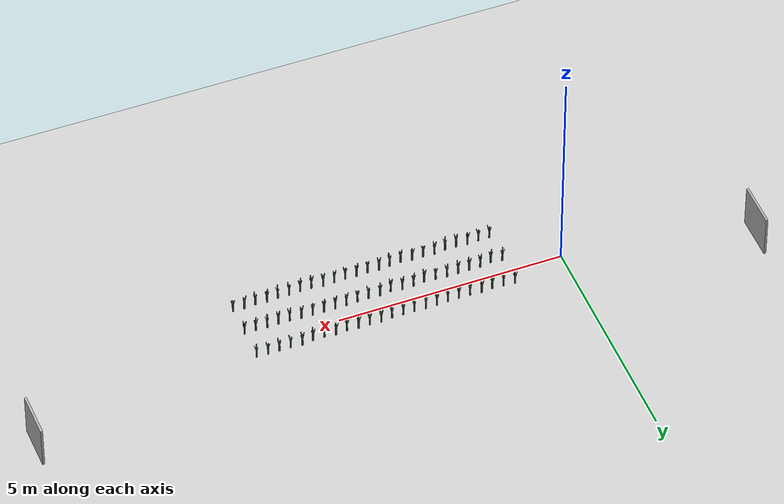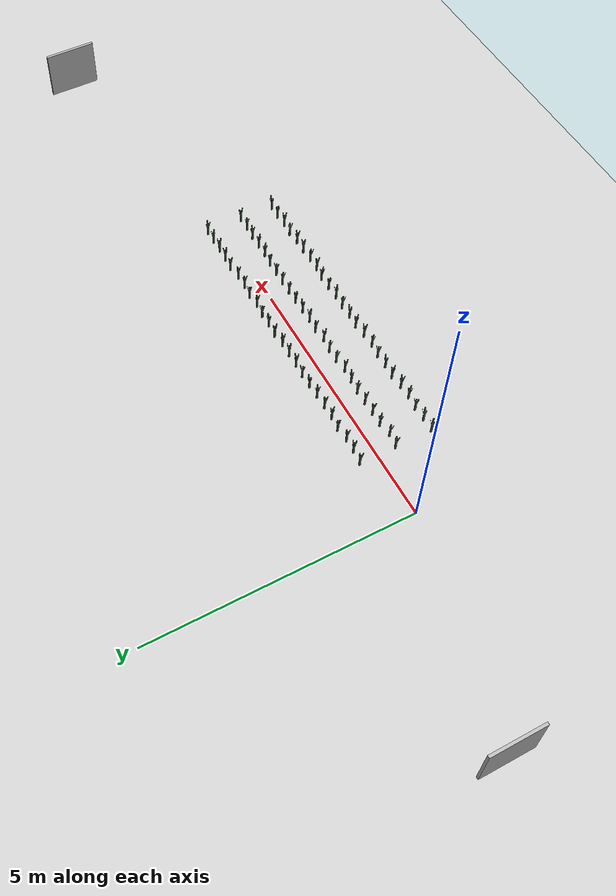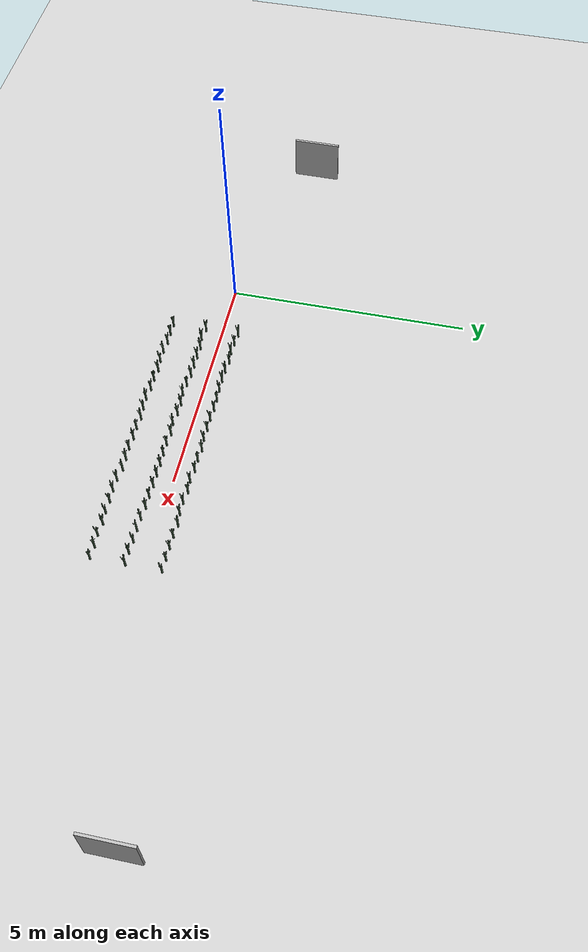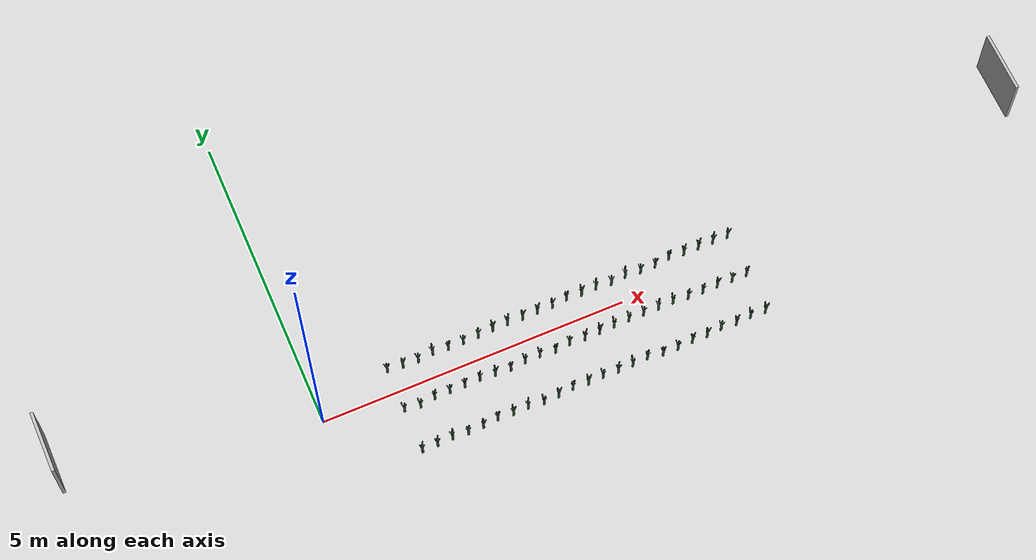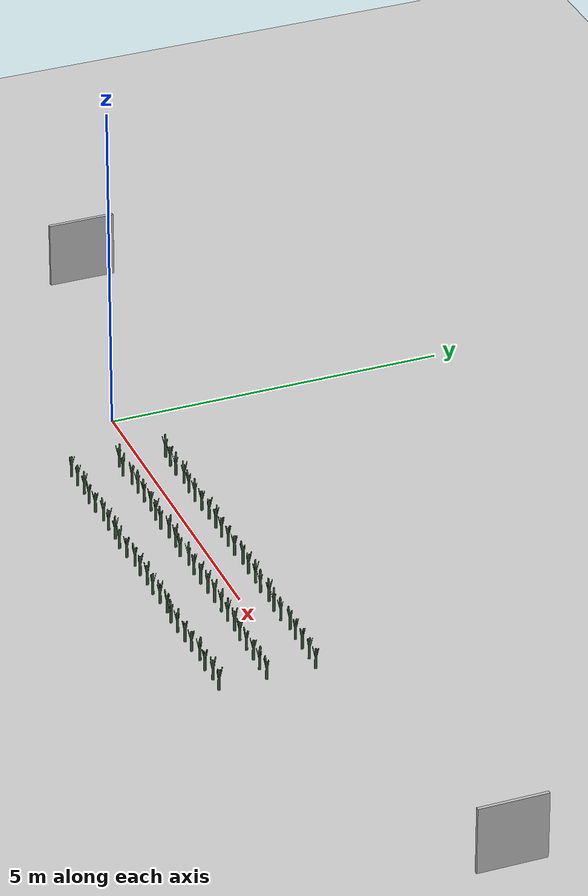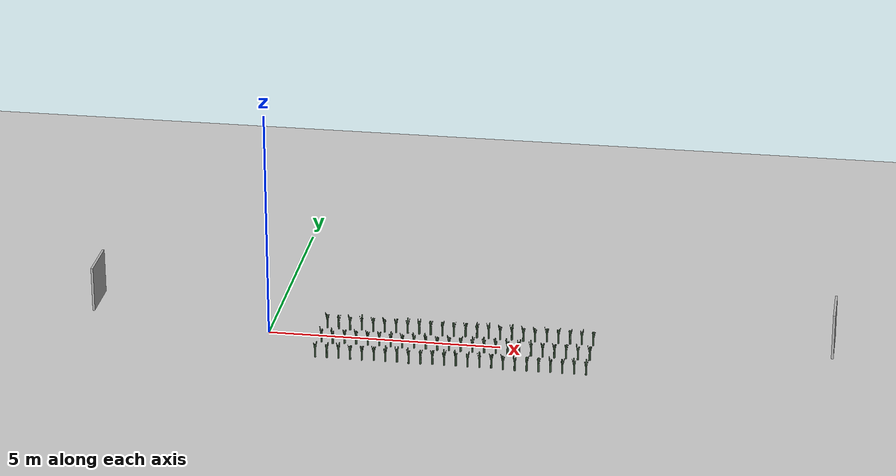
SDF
<sdf version="1.6">
 <world name="default">
  <light name="sun" type="directional">
   <pose>0 0 10 0 -0 0</pose>
   <diffuse>0.8 0.8 0.8 1</diffuse>
   <specular>0.1 0.1 0.1 1</specular>
   <attenuation>
    <range>1000</range>
    <constant>0.9</constant>
    <linear>0.01</linear>
    <quadratic>0.001</quadratic>
   </attenuation>
   <direction>0.9 0.5 -1</direction>
  </light>
  <include><uri>model://Sign</uri><pose>12 1 0 0 0 0</pose><static>1</static></include>
  <include><uri>model://Sign</uri><pose>-4 1 0 0 0 0</pose><static>1</static></include>
  <include><uri>model://dirt_plane</uri></include>
  <scene><background>160 210 255 1</background><ambient>100 100 100 1</ambient></scene>
  <include><uri>model://Leek</uri><pose>1.200000 0.366229 0.15 0 0 2.921209</pose><static>0</static></include>
  <include><uri>model://Leek</uri><pose>1.450000 0.341276 0.15 0 0 -1.570236</pose><static>0</static></include>
  <include><uri>model://Leek</uri><pose>1.700000 0.330334 0.15 0 0 -3.539836</pose><static>0</static></include>
  <include><uri>model://Leek</uri><pose>1.950000 0.358444 0.15 0 0 1.519841</pose><static>0</static></include>
  <include><uri>model://Leek</uri><pose>2.200000 0.333893 0.15 0 0 -2.899278</pose><static>0</static></include>
  <include><uri>model://Leek</uri><pose>2.450000 0.331040 0.15 0 0 -3.412776</pose><static>0</static></include>
  <include><uri>model://Leek</uri><pose>2.700000 0.338102 0.15 0 0 -2.141561</pose><static>0</static></include>
  <include><uri>model://Leek</uri><pose>2.950000 0.350061 0.15 0 0 0.010955</pose><static>0</static></include>
  <include><uri>model://Leek</uri><pose>3.200000 0.354542 0.15 0 0 0.817501</pose><static>0</static></include>
  <include><uri>model://Leek</uri><pose>3.450000 0.340979 0.15 0 0 -1.623767</pose><static>0</static></include>
  <include><uri>model://Leek</uri><pose>3.700000 0.343704 0.15 0 0 -1.133259</pose><static>0</static></include>
  <include><uri>model://Leek</uri><pose>3.950000 0.340290 0.15 0 0 -1.747808</pose><static>0</static></include>
  <include><uri>model://Leek</uri><pose>4.200000 0.368794 0.15 0 0 3.382912</pose><static>0</static></include>
  <include><uri>model://Leek</uri><pose>4.450000 0.349972 0.15 0 0 -0.005113</pose><static>0</static></include>
  <include><uri>model://Leek</uri><pose>4.700000 0.356589 0.15 0 0 1.186022</pose><static>0</static></include>
  <include><uri>model://Leek</uri><pose>4.950000 0.330646 0.15 0 0 -3.483685</pose><static>0</static></include>
  <include><uri>model://Leek</uri><pose>5.200000 0.357164 0.15 0 0 1.289437</pose><static>0</static></include>
  <include><uri>model://Leek</uri><pose>5.450000 0.330340 0.15 0 0 -3.538885</pose><static>0</static></include>
  <include><uri>model://Leek</uri><pose>5.700000 0.331490 0.15 0 0 -3.331721</pose><static>0</static></include>
  <include><uri>model://Leek</uri><pose>5.950000 0.368585 0.15 0 0 3.345317</pose><static>0</static></include>
  <include><uri>model://Leek</uri><pose>6.200000 0.344461 0.15 0 0 -0.996965</pose><static>0</static></include>
  <include><uri>model://Leek</uri><pose>6.450000 0.343858 0.15 0 0 -1.105501</pose><static>0</static></include>
  <include><uri>model://Leek</uri><pose>6.700000 0.345840 0.15 0 0 -0.748768</pose><static>0</static></include>
  <include><uri>model://Leek</uri><pose>6.950000 0.339441 0.15 0 0 -1.900708</pose><static>0</static></include>
  <include><uri>model://Leek</uri><pose>1.200000 -0.335703 0.15 0 0 2.573541</pose><static>0</static></include>
  <include><uri>model://Leek</uri><pose>1.450000 -0.372129 0.15 0 0 -3.983198</pose><static>0</static></include>
  <include><uri>model://Leek</uri><pose>1.700000 -0.329094 0.15 0 0 3.763005</pose><static>0</static></include>
  <include><uri>model://Leek</uri><pose>1.950000 -0.334082 0.15 0 0 2.865259</pose><static>0</static></include>
  <include><uri>model://Leek</uri><pose>2.200000 -0.332748 0.15 0 0 3.105380</pose><static>0</static></include>
  <include><uri>model://Leek</uri><pose>2.450000 -0.328043 0.15 0 0 3.952279</pose><static>0</static></include>
  <include><uri>model://Leek</uri><pose>2.700000 -0.350805 0.15 0 0 -0.144852</pose><static>0</static></include>
  <include><uri>model://Leek</uri><pose>2.950000 -0.367113 0.15 0 0 -3.080393</pose><static>0</static></include>
  <include><uri>model://Leek</uri><pose>3.200000 -0.337374 0.15 0 0 2.272681</pose><static>0</static></include>
  <include><uri>model://Leek</uri><pose>3.450000 -0.338031 0.15 0 0 2.154343</pose><static>0</static></include>
  <include><uri>model://Leek</uri><pose>3.700000 -0.366066 0.15 0 0 -2.891930</pose><static>0</static></include>
  <include><uri>model://Leek</uri><pose>3.950000 -0.334759 0.15 0 0 2.743344</pose><static>0</static></include>
  <include><uri>model://Leek</uri><pose>4.200000 -0.355248 0.15 0 0 -0.944726</pose><static>0</static></include>
  <include><uri>model://Leek</uri><pose>4.450000 -0.349837 0.15 0 0 0.029296</pose><static>0</static></include>
  <include><uri>model://Leek</uri><pose>4.700000 -0.339745 0.15 0 0 1.845849</pose><static>0</static></include>
  <include><uri>model://Leek</uri><pose>4.950000 -0.338818 0.15 0 0 2.012767</pose><static>0</static></include>
  <include><uri>model://Leek</uri><pose>5.200000 -0.337172 0.15 0 0 2.309012</pose><static>0</static></include>
  <include><uri>model://Leek</uri><pose>5.450000 -0.344310 0.15 0 0 1.024212</pose><static>0</static></include>
  <include><uri>model://Leek</uri><pose>5.700000 -0.339942 0.15 0 0 1.810404</pose><static>0</static></include>
  <include><uri>model://Leek</uri><pose>5.950000 -0.363365 0.15 0 0 -2.405613</pose><static>0</static></include>
  <include><uri>model://Leek</uri><pose>6.200000 -0.364642 0.15 0 0 -2.635529</pose><static>0</static></include>
  <include><uri>model://Leek</uri><pose>6.450000 -0.360577 0.15 0 0 -1.903808</pose><static>0</static></include>
  <include><uri>model://Leek</uri><pose>6.700000 -0.370866 0.15 0 0 -3.755809</pose><static>0</static></include>
  <include><uri>model://Leek</uri><pose>6.950000 -0.366161 0.15 0 0 -2.908892</pose><static>0</static></include>
  <include><uri>model://Leek</uri><pose>1.200000 -1.053779 0.15 0 0 -0.680271</pose><static>0</static></include>
  <include><uri>model://Leek</uri><pose>1.450000 -1.053046 0.15 0 0 -0.548313</pose><static>0</static></include>
  <include><uri>model://Leek</uri><pose>1.700000 -1.043303 0.15 0 0 1.205472</pose><static>0</static></include>
  <include><uri>model://Leek</uri><pose>1.950000 -1.064689 0.15 0 0 -2.643968</pose><static>0</static></include>
  <include><uri>model://Leek</uri><pose>2.200000 -1.060875 0.15 0 0 -1.957443</pose><static>0</static></include>
  <include><uri>model://Leek</uri><pose>2.450000 -1.031506 0.15 0 0 3.328911</pose><static>0</static></include>
  <include><uri>model://Leek</uri><pose>2.700000 -1.050737 0.15 0 0 -0.132692</pose><static>0</static></include>
  <include><uri>model://Leek</uri><pose>2.950000 -1.043531 0.15 0 0 1.164376</pose><static>0</static></include>
  <include><uri>model://Leek</uri><pose>3.200000 -1.073778 0.15 0 0 -4.279952</pose><static>0</static></include>
  <include><uri>model://Leek</uri><pose>3.450000 -1.058210 0.15 0 0 -1.477784</pose><static>0</static></include>
  <include><uri>model://Leek</uri><pose>3.700000 -1.030675 0.15 0 0 3.478425</pose><static>0</static></include>
  <include><uri>model://Leek</uri><pose>3.950000 -1.049133 0.15 0 0 0.155981</pose><static>0</static></include>
  <include><uri>model://Leek</uri><pose>4.200000 -1.037660 0.15 0 0 2.221213</pose><static>0</static></include>
  <include><uri>model://Leek</uri><pose>4.450000 -1.053845 0.15 0 0 -0.692130</pose><static>0</static></include>
  <include><uri>model://Leek</uri><pose>4.700000 -1.040519 0.15 0 0 1.706535</pose><static>0</static></include>
  <include><uri>model://Leek</uri><pose>4.950000 -1.029800 0.15 0 0 3.636057</pose><static>0</static></include>
  <include><uri>model://Leek</uri><pose>5.200000 -1.067690 0.15 0 0 -3.184135</pose><static>0</static></include>
  <include><uri>model://Leek</uri><pose>5.450000 -1.071419 0.15 0 0 -3.855337</pose><static>0</static></include>
  <include><uri>model://Leek</uri><pose>5.700000 -1.057143 0.15 0 0 -1.285746</pose><static>0</static></include>
  <include><uri>model://Leek</uri><pose>5.950000 -1.059776 0.15 0 0 -1.759676</pose><static>0</static></include>
  <include><uri>model://Leek</uri><pose>6.200000 -1.035987 0.15 0 0 2.522424</pose><static>0</static></include>
  <include><uri>model://Leek</uri><pose>6.450000 -1.057378 0.15 0 0 -1.328025</pose><static>0</static></include>
  <include><uri>model://Leek</uri><pose>6.700000 -1.039676 0.15 0 0 1.858367</pose><static>0</static></include>
  <include><uri>model://Leek</uri><pose>6.950000 -1.050153 0.15 0 0 -0.027612</pose><static>0</static></include>
 </world>
</sdf>

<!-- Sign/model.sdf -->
<sdf version='1.6'>
  <model name='Sign'>
    <link name='link'>
      <pose frame=''>0 0 0 0 -0 0</pose>
      <inertial>
        <mass>1</mass>
        <inertia>
          <ixx>0.166667</ixx>
          <ixy>0</ixy>
          <ixz>0</ixz>
          <iyy>0.166667</iyy>
          <iyz>0</iyz>
          <izz>0.166667</izz>
        </inertia>
        <pose frame=''>0 0 0 0 -0 0</pose>
      </inertial>
      <self_collide>0</self_collide>
      <kinematic>0</kinematic>
      <gravity>1</gravity>
      <visual name='visual'>
        <geometry>
          <box>
            <size>1 0.05 1</size>
          </box>
        </geometry>
        <material>
          <script>
            <uri>model://ground_plane/materials/scripts/my_ground_plane.material</uri>
            <uri>model://ground_plane/materials/textures</uri>
            <name>my_ground_plane/NaioLogo</name>
          </script>
        </material>
        <pose frame=''>0 0 0.5 0 -0 1.57</pose>
        <cast_shadows>1</cast_shadows>
        <transparency>0</transparency>
      </visual>
    </link>
    <static>1</static>
    <allow_auto_disable>1</allow_auto_disable>
  </model>
</sdf>

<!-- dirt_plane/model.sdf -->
<sdf version="1.4">
<model name="dirt_plane">
  <static>true</static>
    <link name="link">
      <collision name="collision">
        <geometry>
          <plane>
            <normal>0 0 1</normal>
            <size>100 100</size>
          </plane>
        </geometry>
        <surface>
          <friction>
            <ode>
              <mu>100</mu>
              <mu2>50</mu2>
            </ode>
          </friction>
        </surface>
      </collision>
      <visual name="visual">
        <cast_shadows>false</cast_shadows>
        <geometry>
          <plane>
            <normal>0 0 1</normal>
            <size>100 100</size>
          </plane>
        </geometry>
        <material>
          <script>
            <uri>model://ground_plane/materials/scripts/my_ground_plane.material</uri>
            <uri>model://ground_plane/materials/textures</uri>
            <name>my_ground_plane/Dirt</name>
          </script>
        </material>
      </visual>
    </link>
  </model>
</sdf>

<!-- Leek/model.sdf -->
<sdf version='1.6'>
  <model name='Leek'>
    <link name='link'>
      <pose frame=''>0 0 0 0 -0 0</pose>
      <inertial>
        <mass>1</mass>
        <inertia>
          <ixx>0.145833</ixx>
          <ixy>0</ixy>
          <ixz>0</ixz>
          <iyy>0.145833</iyy>
          <iyz>0</iyz>
          <izz>0.125</izz>
        </inertia>
        <pose frame=''>0 0 0 0 -0 0</pose>
      </inertial>
      <self_collide>0</self_collide>
      <kinematic>0</kinematic>
      <gravity>1</gravity>
      <visual name='visual'>
        <geometry>
          <mesh>
            <uri>model://Leek/Poireau.dae</uri>
            <scale>1 1 1</scale>
          </mesh>
        </geometry>
        <material>
          <script>
            <name>Gazebo/Grey</name>
            <uri>file://media/materials/scripts/gazebo.material</uri>
          </script>
          <ambient>0.3 0.7 0.4 0</ambient>
          <diffuse>0.2 0.3 0.2 0</diffuse>
          <specular>0 0 0 1</specular>
          <emissive>0 0 0 1</emissive>
          <shader type='vertex'>
            <normal_map>__default__</normal_map>
          </shader>
        </material>
        <pose frame=''>0 0 -0.08 0 -0 0</pose>
        <cast_shadows>1</cast_shadows>
        <transparency>0</transparency>
      </visual>
      <collision name='collision'>
        <laser_retro>0</laser_retro>
        <max_contacts>10</max_contacts>
        <pose frame=''>0 0 0 0 -0 0</pose>
        <geometry>
          <cylinder>
            <radius>0.02</radius>
            <length>0.25</length>
          </cylinder>
        </geometry>
        <surface>
          <friction>
            <ode>
              <mu>1</mu>
              <mu2>1</mu2>
              <fdir1>0 0 0</fdir1>
              <slip1>0</slip1>
              <slip2>0</slip2>
            </ode>
            <torsional>
              <coefficient>1</coefficient>
              <patch_radius>0</patch_radius>
              <surface_radius>0</surface_radius>
              <use_patch_radius>1</use_patch_radius>
              <ode>
                <slip>0</slip>
              </ode>
            </torsional>
          </friction>
          <bounce>
            <restitution_coefficient>0</restitution_coefficient>
            <threshold>1e+06</threshold>
          </bounce>
          <contact>
            <collide_without_contact>0</collide_without_contact>
            <collide_without_contact_bitmask>1</collide_without_contact_bitmask>
            <collide_bitmask>1</collide_bitmask>
            <ode>
              <soft_cfm>0</soft_cfm>
              <soft_erp>0.2</soft_erp>
              <kp>1e+13</kp>
              <kd>1</kd>
              <max_vel>0.01</max_vel>
              <min_depth>0</min_depth>
            </ode>
            <bullet>
              <split_impulse>1</split_impulse>
              <split_impulse_penetration_threshold>-0.01</split_impulse_penetration_threshold>
              <soft_cfm>0</soft_cfm>
              <soft_erp>0.2</soft_erp>
              <kp>1e+13</kp>
              <kd>1</kd>
            </bullet>
          </contact>
        </surface>
      </collision>
    </link>
    <static>0</static>
    <allow_auto_disable>1</allow_auto_disable>
  </model>
</sdf>
